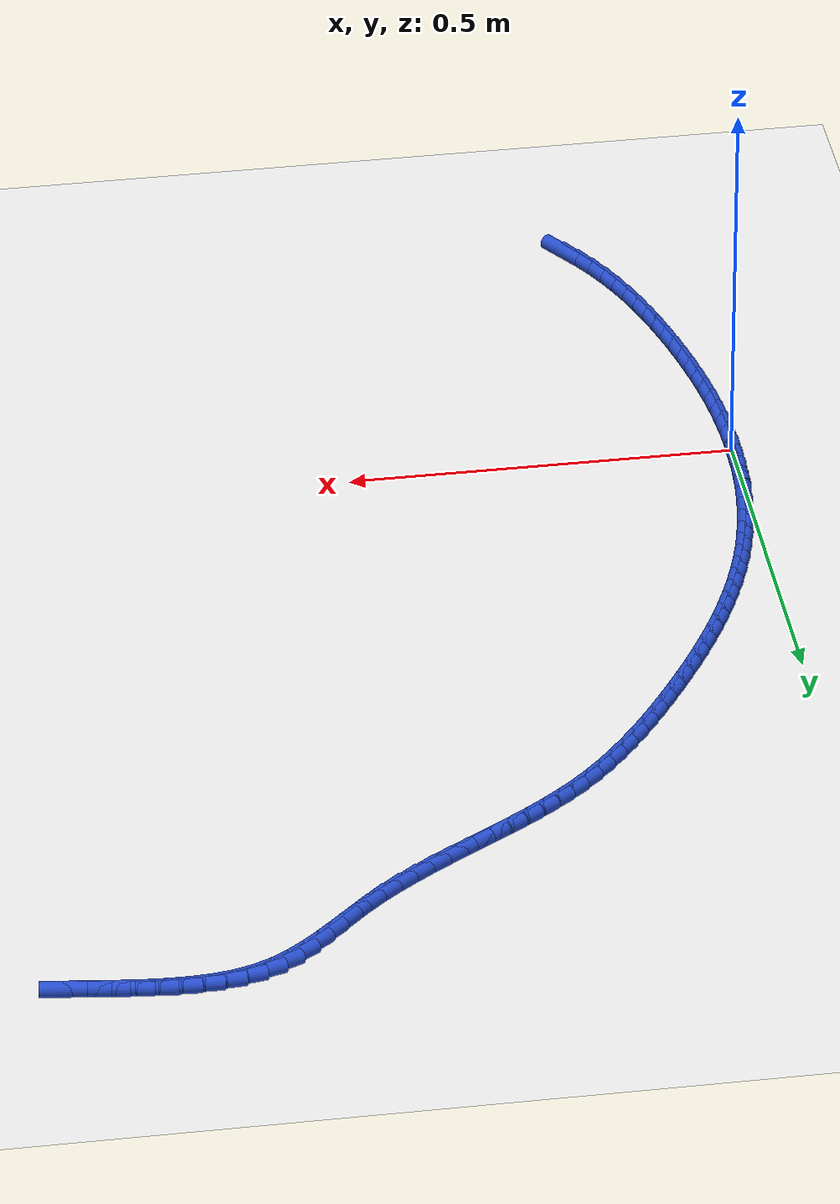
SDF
<sdf version="1.6">
 <world name="default">
  <model name="ground_plane">
   <static>1</static>
   <link name="link">
    <collision name="collision">
     <geometry><plane><normal>0 0 1</normal><size>100 100</size></plane></geometry>
     <surface><friction><ode><mu>100</mu><mu2>50</mu2></ode></friction></surface>
    </collision>
    <visual name="visual">
     <cast_shadows>0</cast_shadows>
     <geometry><plane><normal>0 0 1</normal><size>100 100</size></plane></geometry>
     <material>
      <script><uri>file://media/materials/scripts/gazebo.material</uri><name>Gazebo/WhiteGlow</name></script>
     </material>
    </visual>
   </link>
  </model>
  <model name="line">
   <link name="link_0">
    <pose>6.071532165918825e-18 2.7755575615628914e-17 0.01 0 1.57 1.5674756305207604</pose>
    <collision name="collision">
     <geometry><cylinder><radius>0.01</radius><length>0.08</length></cylinder></geometry>
    </collision>
    <visual name="visual">
     <material>
      <script><name>Gazebo/Blue</name><uri>file://media/materials/scripts/gazebo.material</uri></script>
     </material>
     <geometry><cylinder><radius>0.01</radius><length>0.08</length></cylinder></geometry>
    </visual>
   </link>
   <link name="link_1">
    <pose>9.140662447927374e-05 0.027526241773434188 0.01 0 1.57 1.5391433976405038</pose>
    <collision name="collision">
     <geometry><cylinder><radius>0.01</radius><length>0.08</length></cylinder></geometry>
    </collision>
    <visual name="visual">
     <material>
      <script><name>Gazebo/Blue</name><uri>file://media/materials/scripts/gazebo.material</uri></script>
     </material>
     <geometry><cylinder><radius>0.01</radius><length>0.08</length></cylinder></geometry>
    </visual>
   </link>
   <link name="link_2">
    <pose>0.0009641932096115018 0.05509067593601669 0.01 0 1.57 1.5102628457527791</pose>
    <collision name="collision">
     <geometry><cylinder><radius>0.01</radius><length>0.08</length></cylinder></geometry>
    </collision>
    <visual name="visual">
     <material>
      <script><name>Gazebo/Blue</name><uri>file://media/materials/scripts/gazebo.material</uri></script>
     </material>
     <geometry><cylinder><radius>0.01</radius><length>0.08</length></cylinder></geometry>
    </visual>
   </link>
   <link name="link_3">
    <pose>0.0026345334913649883 0.08265062365203125 0.01 0 1.57 1.4807527042488193</pose>
    <collision name="collision">
     <geometry><cylinder><radius>0.01</radius><length>0.08</length></cylinder></geometry>
    </collision>
    <visual name="visual">
     <material>
      <script><name>Gazebo/Blue</name><uri>file://media/materials/scripts/gazebo.material</uri></script>
     </material>
     <geometry><cylinder><radius>0.01</radius><length>0.08</length></cylinder></geometry>
    </visual>
   </link>
   <link name="link_4">
    <pose>0.0051186012057080265 0.1101634060857615 0.01 0 1.57 1.4505329016120636</pose>
    <collision name="collision">
     <geometry><cylinder><radius>0.01</radius><length>0.08</length></cylinder></geometry>
    </collision>
    <visual name="visual">
     <material>
      <script><name>Gazebo/Blue</name><uri>file://media/materials/scripts/gazebo.material</uri></script>
     </material>
     <geometry><cylinder><radius>0.01</radius><length>0.08</length></cylinder></geometry>
    </visual>
   </link>
   <link name="link_5">
    <pose>0.008432570088608916 0.1375863444014912 0.01 0 1.57 1.4195247659248655</pose>
    <collision name="collision">
     <geometry><cylinder><radius>0.01</radius><length>0.08</length></cylinder></geometry>
    </collision>
    <visual name="visual">
     <material>
      <script><name>Gazebo/Blue</name><uri>file://media/materials/scripts/gazebo.material</uri></script>
     </material>
     <geometry><cylinder><radius>0.01</radius><length>0.08</length></cylinder></geometry>
    </visual>
   </link>
   <link name="link_6">
    <pose>0.012592613876035956 0.16487675976350408 0.01 0 1.57 1.3876514010633312</pose>
    <collision name="collision">
     <geometry><cylinder><radius>0.01</radius><length>0.08</length></cylinder></geometry>
    </collision>
    <visual name="visual">
     <material>
      <script><name>Gazebo/Blue</name><uri>file://media/materials/scripts/gazebo.material</uri></script>
     </material>
     <geometry><cylinder><radius>0.01</radius><length>0.08</length></cylinder></geometry>
    </visual>
   </link>
   <link name="link_7">
    <pose>0.01761490630395744 0.1919919733360837 0.01 0 1.57 1.3548382598674122</pose>
    <collision name="collision">
     <geometry><cylinder><radius>0.01</radius><length>0.08</length></cylinder></geometry>
    </collision>
    <visual name="visual">
     <material>
      <script><name>Gazebo/Blue</name><uri>file://media/materials/scripts/gazebo.material</uri></script>
     </material>
     <geometry><cylinder><radius>0.01</radius><length>0.08</length></cylinder></geometry>
    </visual>
   </link>
   <link name="link_8">
    <pose>0.023515621108341656 0.21888930628351383 0.01 0 1.57 1.3210139364723679</pose>
    <collision name="collision">
     <geometry><cylinder><radius>0.01</radius><length>0.08</length></cylinder></geometry>
    </collision>
    <visual name="visual">
     <material>
      <script><name>Gazebo/Blue</name><uri>file://media/materials/scripts/gazebo.material</uri></script>
     </material>
     <geometry><cylinder><radius>0.01</radius><length>0.08</length></cylinder></geometry>
    </visual>
   </link>
   <link name="link_9">
    <pose>0.030310932025156917 0.24552607977007823 0.01 0 1.57 1.286169301168892</pose>
    <collision name="collision">
     <geometry><cylinder><radius>0.01</radius><length>0.08</length></cylinder></geometry>
    </collision>
    <visual name="visual">
     <material>
      <script><name>Gazebo/Blue</name><uri>file://media/materials/scripts/gazebo.material</uri></script>
     </material>
     <geometry><cylinder><radius>0.01</radius><length>0.08</length></cylinder></geometry>
    </visual>
   </link>
   <link name="link_10">
    <pose>0.03801568284108279 0.271860746587741 0.01 0 1.57 1.2516253478246275</pose>
    <collision name="collision">
     <geometry><cylinder><radius>0.01</radius><length>0.08</length></cylinder></geometry>
    </collision>
    <visual name="visual">
     <material>
      <script><name>Gazebo/Blue</name><uri>file://media/materials/scripts/gazebo.material</uri></script>
     </material>
     <geometry><cylinder><radius>0.01</radius><length>0.08</length></cylinder></geometry>
    </visual>
   </link>
   <link name="link_11">
    <pose>0.04661365638157969 0.29787818868918575 0.01 0 1.57 1.2188027455645127</pose>
    <collision name="collision">
     <geometry><cylinder><radius>0.01</radius><length>0.08</length></cylinder></geometry>
    </collision>
    <visual name="visual">
     <material>
      <script><name>Gazebo/Blue</name><uri>file://media/materials/scripts/gazebo.material</uri></script>
     </material>
     <geometry><cylinder><radius>0.01</radius><length>0.08</length></cylinder></geometry>
    </visual>
   </link>
   <link name="link_12">
    <pose>0.05605730993136816 0.3235899423133234 0.01 0 1.57 1.1878201289633987</pose>
    <collision name="collision">
     <geometry><cylinder><radius>0.01</radius><length>0.08</length></cylinder></geometry>
    </collision>
    <visual name="visual">
     <material>
      <script><name>Gazebo/Blue</name><uri>file://media/materials/scripts/gazebo.material</uri></script>
     </material>
     <geometry><cylinder><radius>0.01</radius><length>0.08</length></cylinder></geometry>
    </visual>
   </link>
   <link name="link_13">
    <pose>0.0662977179087826 0.3490087203528622 0.01 0 1.57 1.1587152675533412</pose>
    <collision name="collision">
     <geometry><cylinder><radius>0.01</radius><length>0.08</length></cylinder></geometry>
    </collision>
    <visual name="visual">
     <material>
      <script><name>Gazebo/Blue</name><uri>file://media/materials/scripts/gazebo.material</uri></script>
     </material>
     <geometry><cylinder><radius>0.01</radius><length>0.08</length></cylinder></geometry>
    </visual>
   </link>
   <link name="link_14">
    <pose>0.0772859547321573 0.3741472357005106 0.01 0 1.57 1.1315083457755257</pose>
    <collision name="collision">
     <geometry><cylinder><radius>0.01</radius><length>0.08</length></cylinder></geometry>
    </collision>
    <visual name="visual">
     <material>
      <script><name>Gazebo/Blue</name><uri>file://media/materials/scripts/gazebo.material</uri></script>
     </material>
     <geometry><cylinder><radius>0.01</radius><length>0.08</length></cylinder></geometry>
    </visual>
   </link>
   <link name="link_15">
    <pose>0.08897309481982664 0.3990182012489771 0.01 0 1.57 1.1062049550662587</pose>
    <collision name="collision">
     <geometry><cylinder><radius>0.01</radius><length>0.08</length></cylinder></geometry>
    </collision>
    <visual name="visual">
     <material>
      <script><name>Gazebo/Blue</name><uri>file://media/materials/scripts/gazebo.material</uri></script>
     </material>
     <geometry><cylinder><radius>0.01</radius><length>0.08</length></cylinder></geometry>
    </visual>
   </link>
   <link name="link_16">
    <pose>0.10131021259012496 0.4236343298909699 0.01 0 1.57 1.0827990464568493</pose>
    <collision name="collision">
     <geometry><cylinder><radius>0.01</radius><length>0.08</length></cylinder></geometry>
    </collision>
    <visual name="visual">
     <material>
      <script><name>Gazebo/Blue</name><uri>file://media/materials/scripts/gazebo.material</uri></script>
     </material>
     <geometry><cylinder><radius>0.01</radius><length>0.08</length></cylinder></geometry>
    </visual>
   </link>
   <link name="link_17">
    <pose>0.11424838246138666 0.44800833451919775 0.01 0 1.57 1.0612757265583814</pose>
    <collision name="collision">
     <geometry><cylinder><radius>0.01</radius><length>0.08</length></cylinder></geometry>
    </collision>
    <visual name="visual">
     <material>
      <script><name>Gazebo/Blue</name><uri>file://media/materials/scripts/gazebo.material</uri></script>
     </material>
     <geometry><cylinder><radius>0.01</radius><length>0.08</length></cylinder></geometry>
    </visual>
   </link>
   <link name="link_18">
    <pose>0.127738678851946 0.4721529280263687 0.01 0 1.57 1.0416138213661614</pose>
    <collision name="collision">
     <geometry><cylinder><radius>0.01</radius><length>0.08</length></cylinder></geometry>
    </collision>
    <visual name="visual">
     <material>
      <script><name>Gazebo/Blue</name><uri>file://media/materials/scripts/gazebo.material</uri></script>
     </material>
     <geometry><cylinder><radius>0.01</radius><length>0.08</length></cylinder></geometry>
    </visual>
   </link>
   <link name="link_19">
    <pose>0.1417321761801374 0.4960808233051913 0.01 0 1.57 1.0237881672573892</pose>
    <collision name="collision">
     <geometry><cylinder><radius>0.01</radius><length>0.08</length></cylinder></geometry>
    </collision>
    <visual name="visual">
     <material>
      <script><name>Gazebo/Blue</name><uri>file://media/materials/scripts/gazebo.material</uri></script>
     </material>
     <geometry><cylinder><radius>0.01</radius><length>0.08</length></cylinder></geometry>
    </visual>
   </link>
   <link name="link_20">
    <pose>0.15617994886429518 0.5198047332483741 0.01 0 1.57 1.0077716157572334</pose>
    <collision name="collision">
     <geometry><cylinder><radius>0.01</radius><length>0.08</length></cylinder></geometry>
    </collision>
    <visual name="visual">
     <material>
      <script><name>Gazebo/Blue</name><uri>file://media/materials/scripts/gazebo.material</uri></script>
     </material>
     <geometry><cylinder><radius>0.01</radius><length>0.08</length></cylinder></geometry>
    </visual>
   </link>
   <link name="link_21">
    <pose>0.17103307132275364 0.5433373707486252 0.01 0 1.57 0.99317126619718</pose>
    <collision name="collision">
     <geometry><cylinder><radius>0.01</radius><length>0.08</length></cylinder></geometry>
    </collision>
    <visual name="visual">
     <material>
      <script><name>Gazebo/Blue</name><uri>file://media/materials/scripts/gazebo.material</uri></script>
     </material>
     <geometry><cylinder><radius>0.01</radius><length>0.08</length></cylinder></geometry>
    </visual>
   </link>
   <link name="link_22">
    <pose>0.1862496830895143 0.5666836334216114 0.01 0 1.57 0.9766275970814263</pose>
    <collision name="collision">
     <geometry><cylinder><radius>0.01</radius><length>0.08</length></cylinder></geometry>
    </collision>
    <visual name="visual">
     <material>
      <script><name>Gazebo/Blue</name><uri>file://media/materials/scripts/gazebo.material</uri></script>
     </material>
     <geometry><cylinder><radius>0.01</radius><length>0.08</length></cylinder></geometry>
    </visual>
   </link>
   <link name="link_23">
    <pose>0.20185209193462914 0.5897774373781414 0.01 0 1.57 0.9562866301027767</pose>
    <collision name="collision">
     <geometry><cylinder><radius>0.01</radius><length>0.08</length></cylinder></geometry>
    </collision>
    <visual name="visual">
     <material>
      <script><name>Gazebo/Blue</name><uri>file://media/materials/scripts/gazebo.material</uri></script>
     </material>
     <geometry><cylinder><radius>0.01</radius><length>0.08</length></cylinder></geometry>
    </visual>
   </link>
   <link name="link_24">
    <pose>0.2178968149411595 0.6125148571322007 0.01 0 1.57 0.932014664983601</pose>
    <collision name="collision">
     <geometry><cylinder><radius>0.01</radius><length>0.08</length></cylinder></geometry>
    </collision>
    <visual name="visual">
     <material>
      <script><name>Gazebo/Blue</name><uri>file://media/materials/scripts/gazebo.material</uri></script>
     </material>
     <geometry><cylinder><radius>0.01</radius><length>0.08</length></cylinder></geometry>
    </visual>
   </link>
   <link name="link_25">
    <pose>0.2344406887423353 0.6347916137183387 0.01 0 1.57 0.9036725686274327</pose>
    <collision name="collision">
     <geometry><cylinder><radius>0.01</radius><length>0.08</length></cylinder></geometry>
    </collision>
    <visual name="visual">
     <material>
      <script><name>Gazebo/Blue</name><uri>file://media/materials/scripts/gazebo.material</uri></script>
     </material>
     <geometry><cylinder><radius>0.01</radius><length>0.08</length></cylinder></geometry>
    </visual>
   </link>
   <link name="link_26">
    <pose>0.25154054997138664 0.6565034281711053 0.01 0 1.57 0.8711090639724113</pose>
    <collision name="collision">
     <geometry><cylinder><radius>0.01</radius><length>0.08</length></cylinder></geometry>
    </collision>
    <visual name="visual">
     <material>
      <script><name>Gazebo/Blue</name><uri>file://media/materials/scripts/gazebo.material</uri></script>
     </material>
     <geometry><cylinder><radius>0.01</radius><length>0.08</length></cylinder></geometry>
    </visual>
   </link>
   <link name="link_27">
    <pose>0.2692532352615439 0.6775460215250506 0.01 0 1.57 0.8341738589353659</pose>
    <collision name="collision">
     <geometry><cylinder><radius>0.01</radius><length>0.08</length></cylinder></geometry>
    </collision>
    <visual name="visual">
     <material>
      <script><name>Gazebo/Blue</name><uri>file://media/materials/scripts/gazebo.material</uri></script>
     </material>
     <geometry><cylinder><radius>0.01</radius><length>0.08</length></cylinder></geometry>
    </visual>
   </link>
   <link name="link_28">
    <pose>0.2876355812460367 0.6978151148147239 0.01 0 1.57 0.7927349094634547</pose>
    <collision name="collision">
     <geometry><cylinder><radius>0.01</radius><length>0.08</length></cylinder></geometry>
    </collision>
    <visual name="visual">
     <material>
      <script><name>Gazebo/Blue</name><uri>file://media/materials/scripts/gazebo.material</uri></script>
     </material>
     <geometry><cylinder><radius>0.01</radius><length>0.08</length></cylinder></geometry>
    </visual>
   </link>
   <link name="link_29">
    <pose>0.3067444245580954 0.7172064290746751 0.01 0 1.57 0.7467003768319606</pose>
    <collision name="collision">
     <geometry><cylinder><radius>0.01</radius><length>0.08</length></cylinder></geometry>
    </collision>
    <visual name="visual">
     <material>
      <script><name>Gazebo/Blue</name><uri>file://media/materials/scripts/gazebo.material</uri></script>
     </material>
     <geometry><cylinder><radius>0.01</radius><length>0.08</length></cylinder></geometry>
    </visual>
   </link>
   <link name="link_30">
    <pose>0.32663660183095 0.735615685339454 0.01 0 1.57 0.69765054891539</pose>
    <collision name="collision">
     <geometry><cylinder><radius>0.01</radius><length>0.08</length></cylinder></geometry>
    </collision>
    <visual name="visual">
     <material>
      <script><name>Gazebo/Blue</name><uri>file://media/materials/scripts/gazebo.material</uri></script>
     </material>
     <geometry><cylinder><radius>0.01</radius><length>0.08</length></cylinder></geometry>
    </visual>
   </link>
   <link name="link_31">
    <pose>0.3473459712777182 0.7529759363208088 0.01 0 1.57 0.6540352566464794</pose>
    <collision name="collision">
     <geometry><cylinder><radius>0.01</radius><length>0.08</length></cylinder></geometry>
    </collision>
    <visual name="visual">
     <material>
      <script><name>Gazebo/Blue</name><uri>file://media/materials/scripts/gazebo.material</uri></script>
     </material>
     <geometry><cylinder><radius>0.01</radius><length>0.08</length></cylinder></geometry>
    </visual>
   </link>
   <link name="link_32">
    <pose>0.3687877360080691 0.7694130066442357 0.01 0 1.57 0.6187739888415973</pose>
    <collision name="collision">
     <geometry><cylinder><radius>0.01</radius><length>0.08</length></cylinder></geometry>
    </collision>
    <visual name="visual">
     <material>
      <script><name>Gazebo/Blue</name><uri>file://media/materials/scripts/gazebo.material</uri></script>
     </material>
     <geometry><cylinder><radius>0.01</radius><length>0.08</length></cylinder></geometry>
    </visual>
   </link>
   <link name="link_33">
    <pose>0.390838911848126 0.7851147615514017 0.01 0 1.57 0.5919632500032311</pose>
    <collision name="collision">
     <geometry><cylinder><radius>0.01</radius><length>0.08</length></cylinder></geometry>
    </collision>
    <visual name="visual">
     <material>
      <script><name>Gazebo/Blue</name><uri>file://media/materials/scripts/gazebo.material</uri></script>
     </material>
     <geometry><cylinder><radius>0.01</radius><length>0.08</length></cylinder></geometry>
    </visual>
   </link>
   <link name="link_34">
    <pose>0.41337649636422613 0.8002690959495663 0.01 0 1.57 0.5735818128889433</pose>
    <collision name="collision">
     <geometry><cylinder><radius>0.01</radius><length>0.08</length></cylinder></geometry>
    </collision>
    <visual name="visual">
     <material>
      <script><name>Gazebo/Blue</name><uri>file://media/materials/scripts/gazebo.material</uri></script>
     </material>
     <geometry><cylinder><radius>0.01</radius><length>0.08</length></cylinder></geometry>
    </visual>
   </link>
   <link name="link_35">
    <pose>0.436277487122707 0.8150639047459896 0.01 0 1.57 0.5635497747987276</pose>
    <collision name="collision">
     <geometry><cylinder><radius>0.01</radius><length>0.08</length></cylinder></geometry>
    </collision>
    <visual name="visual">
     <material>
      <script><name>Gazebo/Blue</name><uri>file://media/materials/scripts/gazebo.material</uri></script>
     </material>
     <geometry><cylinder><radius>0.01</radius><length>0.08</length></cylinder></geometry>
    </visual>
   </link>
   <link name="link_36">
    <pose>0.4594188816899058 0.8296870828479308 0.01 0 1.57 0.5617680727313091</pose>
    <collision name="collision">
     <geometry><cylinder><radius>0.01</radius><length>0.08</length></cylinder></geometry>
    </collision>
    <visual name="visual">
     <material>
      <script><name>Gazebo/Blue</name><uri>file://media/materials/scripts/gazebo.material</uri></script>
     </material>
     <geometry><cylinder><radius>0.01</radius><length>0.08</length></cylinder></geometry>
    </visual>
   </link>
   <link name="link_37">
    <pose>0.4826776776321598 0.8443265251626494 0.01 0 1.57 0.5681394617939199</pose>
    <collision name="collision">
     <geometry><cylinder><radius>0.01</radius><length>0.08</length></cylinder></geometry>
    </collision>
    <visual name="visual">
     <material>
      <script><name>Gazebo/Blue</name><uri>file://media/materials/scripts/gazebo.material</uri></script>
     </material>
     <geometry><cylinder><radius>0.01</radius><length>0.08</length></cylinder></geometry>
    </visual>
   </link>
   <link name="link_38">
    <pose>0.5059308725158063 0.8591701265974053 0.01 0 1.57 0.5825720801927277</pose>
    <collision name="collision">
     <geometry><cylinder><radius>0.01</radius><length>0.08</length></cylinder></geometry>
    </collision>
    <visual name="visual">
     <material>
      <script><name>Gazebo/Blue</name><uri>file://media/materials/scripts/gazebo.material</uri></script>
     </material>
     <geometry><cylinder><radius>0.01</radius><length>0.08</length></cylinder></geometry>
    </visual>
   </link>
   <link name="link_39">
    <pose>0.5290554639071826 0.8744057820594578 0.01 0 1.57 0.6049669555885544</pose>
    <collision name="collision">
     <geometry><cylinder><radius>0.01</radius><length>0.08</length></cylinder></geometry>
    </collision>
    <visual name="visual">
     <material>
      <script><name>Gazebo/Blue</name><uri>file://media/materials/scripts/gazebo.material</uri></script>
     </material>
     <geometry><cylinder><radius>0.01</radius><length>0.08</length></cylinder></geometry>
    </visual>
   </link>
   <link name="link_40">
    <pose>0.5519284493726259 0.8902213864560667 0.01 0 1.57 0.6351908210540583</pose>
    <collision name="collision">
     <geometry><cylinder><radius>0.01</radius><length>0.08</length></cylinder></geometry>
    </collision>
    <visual name="visual">
     <material>
      <script><name>Gazebo/Blue</name><uri>file://media/materials/scripts/gazebo.material</uri></script>
     </material>
     <geometry><cylinder><radius>0.01</radius><length>0.08</length></cylinder></geometry>
    </visual>
   </link>
   <link name="link_41">
    <pose>0.5744268264784739 0.9068048346944917 0.01 0 1.57 0.673036185188692</pose>
    <collision name="collision">
     <geometry><cylinder><radius>0.01</radius><length>0.08</length></cylinder></geometry>
    </collision>
    <visual name="visual">
     <material>
      <script><name>Gazebo/Blue</name><uri>file://media/materials/scripts/gazebo.material</uri></script>
     </material>
     <geometry><cylinder><radius>0.01</radius><length>0.08</length></cylinder></geometry>
    </visual>
   </link>
   <link name="link_42">
    <pose>0.5964275927910634 0.924344021681992 0.01 0 1.57 0.717352664158025</pose>
    <collision name="collision">
     <geometry><cylinder><radius>0.01</radius><length>0.08</length></cylinder></geometry>
    </collision>
    <visual name="visual">
     <material>
      <script><name>Gazebo/Blue</name><uri>file://media/materials/scripts/gazebo.material</uri></script>
     </material>
     <geometry><cylinder><radius>0.01</radius><length>0.08</length></cylinder></geometry>
    </visual>
   </link>
   <link name="link_43">
    <pose>0.6178177636820971 0.9430046986432098 0.01 0 1.57 0.7517087414987628</pose>
    <collision name="collision">
     <geometry><cylinder><radius>0.01</radius><length>0.08</length></cylinder></geometry>
    </collision>
    <visual name="visual">
     <material>
      <script><name>Gazebo/Blue</name><uri>file://media/materials/scripts/gazebo.material</uri></script>
     </material>
     <geometry><cylinder><radius>0.01</radius><length>0.08</length></cylinder></geometry>
    </visual>
   </link>
   <link name="link_44">
    <pose>0.6386843173666205 0.9625106124338553 0.01 0 1.57 0.7618939464606381</pose>
    <collision name="collision">
     <geometry><cylinder><radius>0.01</radius><length>0.08</length></cylinder></geometry>
    </collision>
    <visual name="visual">
     <material>
      <script><name>Gazebo/Blue</name><uri>file://media/materials/scripts/gazebo.material</uri></script>
     </material>
     <geometry><cylinder><radius>0.01</radius><length>0.08</length></cylinder></geometry>
    </visual>
   </link>
   <link name="link_45">
    <pose>0.6592986138683352 0.9821779463662619 0.01 0 1.57 0.7474330402225692</pose>
    <collision name="collision">
     <geometry><cylinder><radius>0.01</radius><length>0.08</length></cylinder></geometry>
    </collision>
    <visual name="visual">
     <material>
      <script><name>Gazebo/Blue</name><uri>file://media/materials/scripts/gazebo.material</uri></script>
     </material>
     <geometry><cylinder><radius>0.01</radius><length>0.08</length></cylinder></geometry>
    </visual>
   </link>
   <link name="link_46">
    <pose>0.6799389083792545 1.0013076424485903 0.01 0 1.57 0.7069871632294046</pose>
    <collision name="collision">
     <geometry><cylinder><radius>0.01</radius><length>0.08</length></cylinder></geometry>
    </collision>
    <visual name="visual">
     <material>
      <script><name>Gazebo/Blue</name><uri>file://media/materials/scripts/gazebo.material</uri></script>
     </material>
     <geometry><cylinder><radius>0.01</radius><length>0.08</length></cylinder></geometry>
    </visual>
   </link>
   <link name="link_47">
    <pose>0.7008834560913925 1.0192006426890017 0.01 0 1.57 0.6378870246674813</pose>
    <collision name="collision">
     <geometry><cylinder><radius>0.01</radius><length>0.08</length></cylinder></geometry>
    </collision>
    <visual name="visual">
     <material>
      <script><name>Gazebo/Blue</name><uri>file://media/materials/scripts/gazebo.material</uri></script>
     </material>
     <geometry><cylinder><radius>0.01</radius><length>0.08</length></cylinder></geometry>
    </visual>
   </link>
   <link name="link_48">
    <pose>0.7224105121967626 1.0351578890956572 0.01 0 1.57 0.5367903988083875</pose>
    <collision name="collision">
     <geometry><cylinder><radius>0.01</radius><length>0.08</length></cylinder></geometry>
    </collision>
    <visual name="visual">
     <material>
      <script><name>Gazebo/Blue</name><uri>file://media/materials/scripts/gazebo.material</uri></script>
     </material>
     <geometry><cylinder><radius>0.01</radius><length>0.08</length></cylinder></geometry>
    </visual>
   </link>
   <link name="link_49">
    <pose>0.7447983318873778 1.0484803236767173 0.01 0 1.57 0.4041215997059033</pose>
    <collision name="collision">
     <geometry><cylinder><radius>0.01</radius><length>0.08</length></cylinder></geometry>
    </collision>
    <visual name="visual">
     <material>
      <script><name>Gazebo/Blue</name><uri>file://media/materials/scripts/gazebo.material</uri></script>
     </material>
     <geometry><cylinder><radius>0.01</radius><length>0.08</length></cylinder></geometry>
    </visual>
   </link>
   <link name="link_50">
    <pose>0.7683023593316703 1.058532057928905 0.01 0 1.57 0.2697600171174407</pose>
    <collision name="collision">
     <geometry><cylinder><radius>0.01</radius><length>0.08</length></cylinder></geometry>
    </collision>
    <visual name="visual">
     <material>
      <script><name>Gazebo/Blue</name><uri>file://media/materials/scripts/gazebo.material</uri></script>
     </material>
     <geometry><cylinder><radius>0.01</radius><length>0.08</length></cylinder></geometry>
    </visual>
   </link>
   <link name="link_51">
    <pose>0.7929373839926421 1.065343637040843 0.01 0 1.57 0.15484582065357963</pose>
    <collision name="collision">
     <geometry><cylinder><radius>0.01</radius><length>0.08</length></cylinder></geometry>
    </collision>
    <visual name="visual">
     <material>
      <script><name>Gazebo/Blue</name><uri>file://media/materials/scripts/gazebo.material</uri></script>
     </material>
     <geometry><cylinder><radius>0.01</radius><length>0.08</length></cylinder></geometry>
    </visual>
   </link>
   <link name="link_52">
    <pose>0.8185738375245055 1.0693453694523851 0.01 0 1.57 0.061328003967448606</pose>
    <collision name="collision">
     <geometry><cylinder><radius>0.01</radius><length>0.08</length></cylinder></geometry>
    </collision>
    <visual name="visual">
     <material>
      <script><name>Gazebo/Blue</name><uri>file://media/materials/scripts/gazebo.material</uri></script>
     </material>
     <geometry><cylinder><radius>0.01</radius><length>0.08</length></cylinder></geometry>
    </visual>
   </link>
   <link name="link_53">
    <pose>0.8450801912366201 1.0709729922936573 0.01 0 1.57 -0.011405368272321394</pose>
    <collision name="collision">
     <geometry><cylinder><radius>0.01</radius><length>0.08</length></cylinder></geometry>
    </collision>
    <visual name="visual">
     <material>
      <script><name>Gazebo/Blue</name><uri>file://media/materials/scripts/gazebo.material</uri></script>
     </material>
     <geometry><cylinder><radius>0.01</radius><length>0.08</length></cylinder></geometry>
    </visual>
   </link>
   <link name="link_54">
    <pose>0.8723249164383449 1.0706622426947827 0.01 0 1.57 -0.06501712908490487</pose>
    <collision name="collision">
     <geometry><cylinder><radius>0.01</radius><length>0.08</length></cylinder></geometry>
    </collision>
    <visual name="visual">
     <material>
      <script><name>Gazebo/Blue</name><uri>file://media/materials/scripts/gazebo.material</uri></script>
     </material>
     <geometry><cylinder><radius>0.01</radius><length>0.08</length></cylinder></geometry>
    </visual>
   </link>
   <link name="link_55">
    <pose>0.9001764844390396 1.068848857785887 0.01 0 1.57 -0.10133194038214302</pose>
    <collision name="collision">
     <geometry><cylinder><radius>0.01</radius><length>0.08</length></cylinder></geometry>
    </collision>
    <visual name="visual">
     <material>
      <script><name>Gazebo/Blue</name><uri>file://media/materials/scripts/gazebo.material</uri></script>
     </material>
     <geometry><cylinder><radius>0.01</radius><length>0.08</length></cylinder></geometry>
    </visual>
   </link>
   <link name="link_56">
    <pose>0.9285033665480636 1.0659685746970942 0.01 0 1.57 -0.12186821499923031</pose>
    <collision name="collision">
     <geometry><cylinder><radius>0.01</radius><length>0.08</length></cylinder></geometry>
    </collision>
    <visual name="visual">
     <material>
      <script><name>Gazebo/Blue</name><uri>file://media/materials/scripts/gazebo.material</uri></script>
     </material>
     <geometry><cylinder><radius>0.01</radius><length>0.08</length></cylinder></geometry>
    </visual>
   </link>
   <link name="link_57">
    <pose>0.9571740340747757 1.0624571305585282 0.01 0 1.57 -0.12764338985851886</pose>
    <collision name="collision">
     <geometry><cylinder><radius>0.01</radius><length>0.08</length></cylinder></geometry>
    </collision>
    <visual name="visual">
     <material>
      <script><name>Gazebo/Blue</name><uri>file://media/materials/scripts/gazebo.material</uri></script>
     </material>
     <geometry><cylinder><radius>0.01</radius><length>0.08</length></cylinder></geometry>
    </visual>
   </link>
   <link name="link_58">
    <pose>0.9860569583285361 1.0587502625003142 0.01 0 1.57 -0.11911975180306798</pose>
    <collision name="collision">
     <geometry><cylinder><radius>0.01</radius><length>0.08</length></cylinder></geometry>
    </collision>
    <visual name="visual">
     <material>
      <script><name>Gazebo/Blue</name><uri>file://media/materials/scripts/gazebo.material</uri></script>
     </material>
     <geometry><cylinder><radius>0.01</radius><length>0.08</length></cylinder></geometry>
    </visual>
   </link>
   <link name="link_221">
    <pose>0.1338714383919821 -0.4998573266819522 0.01 0 1.57 -0.9770286640324389</pose>
    <collision name="collision">
     <geometry><cylinder><radius>0.01</radius><length>0.08</length></cylinder></geometry>
    </collision>
    <visual name="visual">
     <material>
      <script><name>Gazebo/Blue</name><uri>file://media/materials/scripts/gazebo.material</uri></script>
     </material>
     <geometry><cylinder><radius>0.01</radius><length>0.08</length></cylinder></geometry>
    </visual>
   </link>
   <link name="link_222">
    <pose>0.11870543757031461 -0.47739004924063305 0.01 0 1.57 -1.0373653937154284</pose>
    <collision name="collision">
     <geometry><cylinder><radius>0.01</radius><length>0.08</length></cylinder></geometry>
    </collision>
    <visual name="visual">
     <material>
      <script><name>Gazebo/Blue</name><uri>file://media/materials/scripts/gazebo.material</uri></script>
     </material>
     <geometry><cylinder><radius>0.01</radius><length>0.08</length></cylinder></geometry>
    </visual>
   </link>
   <link name="link_223">
    <pose>0.10486423889764963 -0.4539516472074705 0.01 0 1.57 -1.092111791913346</pose>
    <collision name="collision">
     <geometry><cylinder><radius>0.01</radius><length>0.08</length></cylinder></geometry>
    </collision>
    <visual name="visual">
     <material>
      <script><name>Gazebo/Blue</name><uri>file://media/materials/scripts/gazebo.material</uri></script>
     </material>
     <geometry><cylinder><radius>0.01</radius><length>0.08</length></cylinder></geometry>
    </visual>
   </link>
   <link name="link_224">
    <pose>0.092256395867725 -0.4296562693066642 0.01 0 1.57 -1.141361184193926</pose>
    <collision name="collision">
     <geometry><cylinder><radius>0.01</radius><length>0.08</length></cylinder></geometry>
    </collision>
    <visual name="visual">
     <material>
      <script><name>Gazebo/Blue</name><uri>file://media/materials/scripts/gazebo.material</uri></script>
     </material>
     <geometry><cylinder><radius>0.01</radius><length>0.08</length></cylinder></geometry>
    </visual>
   </link>
   <link name="link_225">
    <pose>0.08079046197427749 -0.4046180642624121 0.01 0 1.57 -1.1853049905031243</pose>
    <collision name="collision">
     <geometry><cylinder><radius>0.01</radius><length>0.08</length></cylinder></geometry>
    </collision>
    <visual name="visual">
     <material>
      <script><name>Gazebo/Blue</name><uri>file://media/materials/scripts/gazebo.material</uri></script>
     </material>
     <geometry><cylinder><radius>0.01</radius><length>0.08</length></cylinder></geometry>
    </visual>
   </link>
   <link name="link_226">
    <pose>0.07037499071104421 -0.3789511807989127 0.01 0 1.57 -1.2241879960082787</pose>
    <collision name="collision">
     <geometry><cylinder><radius>0.01</radius><length>0.08</length></cylinder></geometry>
    </collision>
    <visual name="visual">
     <material>
      <script><name>Gazebo/Blue</name><uri>file://media/materials/scripts/gazebo.material</uri></script>
     </material>
     <geometry><cylinder><radius>0.01</radius><length>0.08</length></cylinder></geometry>
    </visual>
   </link>
   <link name="link_227">
    <pose>0.06091853557176232 -0.3527697676403645 0.01 0 1.57 -1.258273385280197</pose>
    <collision name="collision">
     <geometry><cylinder><radius>0.01</radius><length>0.08</length></cylinder></geometry>
    </collision>
    <visual name="visual">
     <material>
      <script><name>Gazebo/Blue</name><uri>file://media/materials/scripts/gazebo.material</uri></script>
     </material>
     <geometry><cylinder><radius>0.01</radius><length>0.08</length></cylinder></geometry>
    </visual>
   </link>
   <link name="link_228">
    <pose>0.05232965005016899 -0.32618797351096596 0.01 0 1.57 -1.287816897734977</pose>
    <collision name="collision">
     <geometry><cylinder><radius>0.01</radius><length>0.08</length></cylinder></geometry>
    </collision>
    <visual name="visual">
     <material>
      <script><name>Gazebo/Blue</name><uri>file://media/materials/scripts/gazebo.material</uri></script>
     </material>
     <geometry><cylinder><radius>0.01</radius><length>0.08</length></cylinder></geometry>
    </visual>
   </link>
   <link name="link_229">
    <pose>0.04451688764000132 -0.29931994713491555 0.01 0 1.57 -1.3130483677016274</pose>
    <collision name="collision">
     <geometry><cylinder><radius>0.01</radius><length>0.08</length></cylinder></geometry>
    </collision>
    <visual name="visual">
     <material>
      <script><name>Gazebo/Blue</name><uri>file://media/materials/scripts/gazebo.material</uri></script>
     </material>
     <geometry><cylinder><radius>0.01</radius><length>0.08</length></cylinder></geometry>
    </visual>
   </link>
   <link name="link_230">
    <pose>0.03738880183499629 -0.272279837236411 0.01 0 1.57 -1.3342651812613198</pose>
    <collision name="collision">
     <geometry><cylinder><radius>0.01</radius><length>0.08</length></cylinder></geometry>
    </collision>
    <visual name="visual">
     <material>
      <script><name>Gazebo/Blue</name><uri>file://media/materials/scripts/gazebo.material</uri></script>
     </material>
     <geometry><cylinder><radius>0.01</radius><length>0.08</length></cylinder></geometry>
    </visual>
   </link>
   <link name="link_231">
    <pose>0.030856374627094514 -0.24517918972891858 0.01 0 1.57 -1.3540038568476251</pose>
    <collision name="collision">
     <geometry><cylinder><radius>0.01</radius><length>0.08</length></cylinder></geometry>
    </collision>
    <visual name="visual">
     <material>
      <script><name>Gazebo/Blue</name><uri>file://media/materials/scripts/gazebo.material</uri></script>
     </material>
     <geometry><cylinder><radius>0.01</radius><length>0.08</length></cylinder></geometry>
    </visual>
   </link>
   <link name="link_232">
    <pose>0.024885599844632345 -0.21807059005474563 0.01 0 1.57 -1.3746739670482695</pose>
    <collision name="collision">
     <geometry><cylinder><radius>0.01</radius><length>0.08</length></cylinder></geometry>
    </collision>
    <visual name="visual">
     <material>
      <script><name>Gazebo/Blue</name><uri>file://media/materials/scripts/gazebo.material</uri></script>
     </material>
     <geometry><cylinder><radius>0.01</radius><length>0.08</length></cylinder></geometry>
    </visual>
   </link>
   <link name="link_233">
    <pose>0.019497018515341788 -0.1909481611727184 0.01 0 1.57 -1.3963641887705636</pose>
    <collision name="collision">
     <geometry><cylinder><radius>0.01</radius><length>0.08</length></cylinder></geometry>
    </collision>
    <visual name="visual">
     <material>
      <script><name>Gazebo/Blue</name><uri>file://media/materials/scripts/gazebo.material</uri></script>
     </material>
     <geometry><cylinder><radius>0.01</radius><length>0.08</length></cylinder></geometry>
    </visual>
   </link>
   <link name="link_234">
    <pose>0.014713507235661978 -0.16380352283071078 0.01 0 1.57 -1.4190544256048523</pose>
    <collision name="collision">
     <geometry><cylinder><radius>0.01</radius><length>0.08</length></cylinder></geometry>
    </collision>
    <visual name="visual">
     <material>
      <script><name>Gazebo/Blue</name><uri>file://media/materials/scripts/gazebo.material</uri></script>
     </material>
     <geometry><cylinder><radius>0.01</radius><length>0.08</length></cylinder></geometry>
    </visual>
   </link>
   <link name="link_235">
    <pose>0.01055794260203204 -0.13662829477659633 0.01 0 1.57 -1.4427177288726352</pose>
    <collision name="collision">
     <geometry><cylinder><radius>0.01</radius><length>0.08</length></cylinder></geometry>
    </collision>
    <visual name="visual">
     <material>
      <script><name>Gazebo/Blue</name><uri>file://media/materials/scripts/gazebo.material</uri></script>
     </material>
     <geometry><cylinder><radius>0.01</radius><length>0.08</length></cylinder></geometry>
    </visual>
   </link>
   <link name="link_236">
    <pose>0.007053201210891105 -0.10941409675824867 0.01 0 1.57 -1.4673198127881506</pose>
    <collision name="collision">
     <geometry><cylinder><radius>0.01</radius><length>0.08</length></cylinder></geometry>
    </collision>
    <visual name="visual">
     <material>
      <script><name>Gazebo/Blue</name><uri>file://media/materials/scripts/gazebo.material</uri></script>
     </material>
     <geometry><cylinder><radius>0.01</radius><length>0.08</length></cylinder></geometry>
    </visual>
   </link>
   <link name="link_237">
    <pose>0.004222159658678304 -0.08215254852354162 0.01 0 1.57 -1.4928186786355129</pose>
    <collision name="collision">
     <geometry><cylinder><radius>0.01</radius><length>0.08</length></cylinder></geometry>
    </collision>
    <visual name="visual">
     <material>
      <script><name>Gazebo/Blue</name><uri>file://media/materials/scripts/gazebo.material</uri></script>
     </material>
     <geometry><cylinder><radius>0.01</radius><length>0.08</length></cylinder></geometry>
    </visual>
   </link>
   <link name="link_238">
    <pose>0.0020876945418327247 -0.05483526982034813 0.01 0 1.57 -1.519164379542535</pose>
    <collision name="collision">
     <geometry><cylinder><radius>0.01</radius><length>0.08</length></cylinder></geometry>
    </collision>
    <visual name="visual">
     <material>
      <script><name>Gazebo/Blue</name><uri>file://media/materials/scripts/gazebo.material</uri></script>
     </material>
     <geometry><cylinder><radius>0.01</radius><length>0.08</length></cylinder></geometry>
    </visual>
   </link>
   <link name="link_239">
    <pose>0.0006726824567936077 -0.027453880396543298 0.01 0 1.57 -1.5462989560031142</pose>
    <collision name="collision">
     <geometry><cylinder><radius>0.01</radius><length>0.08</length></cylinder></geometry>
    </collision>
    <visual name="visual">
     <material>
      <script><name>Gazebo/Blue</name><uri>file://media/materials/scripts/gazebo.material</uri></script>
     </material>
     <geometry><cylinder><radius>0.01</radius><length>0.08</length></cylinder></geometry>
    </visual>
   </link>
   <link name="link_240">
    <pose>1.734723475976807e-17 -1.3877787807814457e-16 0.01 0 1.57 1.5674360851291123</pose>
    <collision name="collision">
     <geometry><cylinder><radius>0.01</radius><length>0.08</length></cylinder></geometry>
    </collision>
    <visual name="visual">
     <material>
      <script><name>Gazebo/Blue</name><uri>file://media/materials/scripts/gazebo.material</uri></script>
     </material>
     <geometry><cylinder><radius>0.01</radius><length>0.08</length></cylinder></geometry>
    </visual>
   </link>
   <link name="link_241">
    <pose>9.252376789108639e-05 0.02753475162140768 0.01 0 1.57 1.5389288067629152</pose>
    <collision name="collision">
     <geometry><cylinder><radius>0.01</radius><length>0.08</length></cylinder></geometry>
    </collision>
    <visual name="visual">
     <material>
      <script><name>Gazebo/Blue</name><uri>file://media/materials/scripts/gazebo.material</uri></script>
     </material>
     <geometry><cylinder><radius>0.01</radius><length>0.08</length></cylinder></geometry>
    </visual>
   </link>
   <link name="link_242">
    <pose>0.0009731303569059414 0.05515875471980647 0.01 0 1.57 1.5531558014141604</pose>
    <collision name="collision">
     <geometry><cylinder><radius>0.01</radius><length>0.08</length></cylinder></geometry>
    </collision>
    <visual name="visual">
     <material>
      <script><name>Gazebo/Blue</name><uri>file://media/materials/scripts/gazebo.material</uri></script>
     </material>
     <geometry><cylinder><radius>0.01</radius><length>0.08</length></cylinder></geometry>
    </visual>
   </link>
  </model>
 </world>
</sdf>
